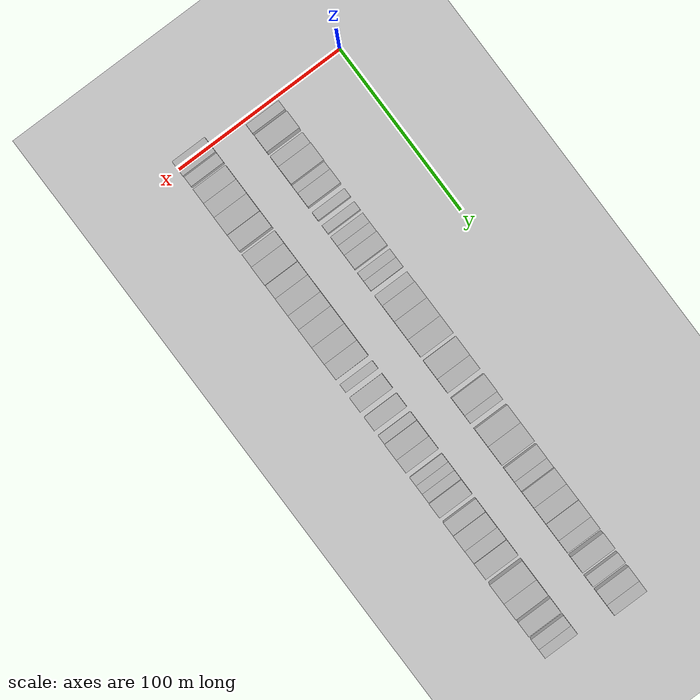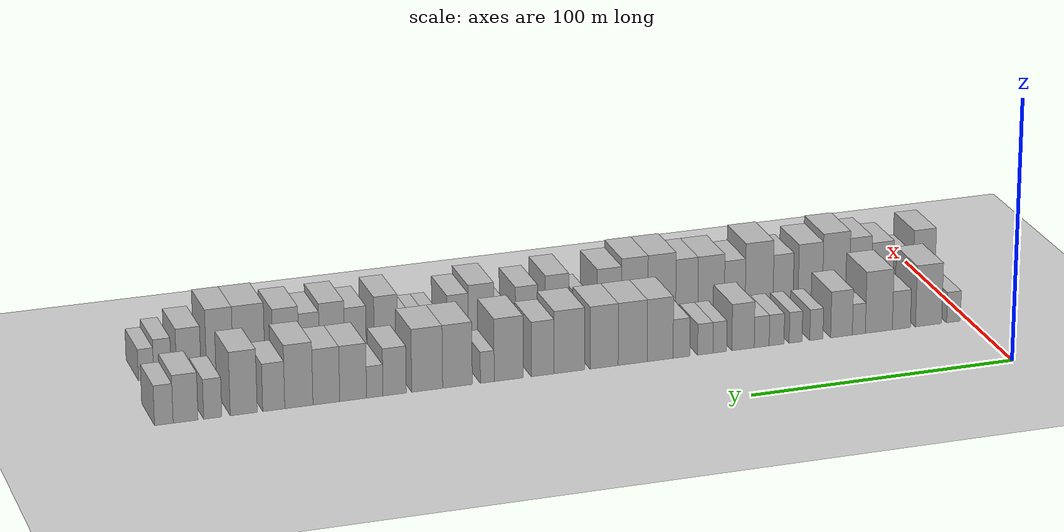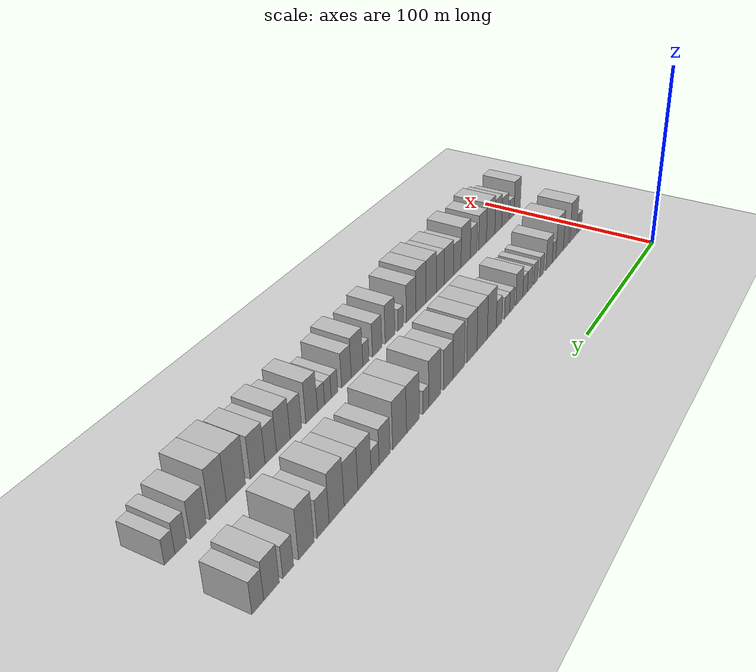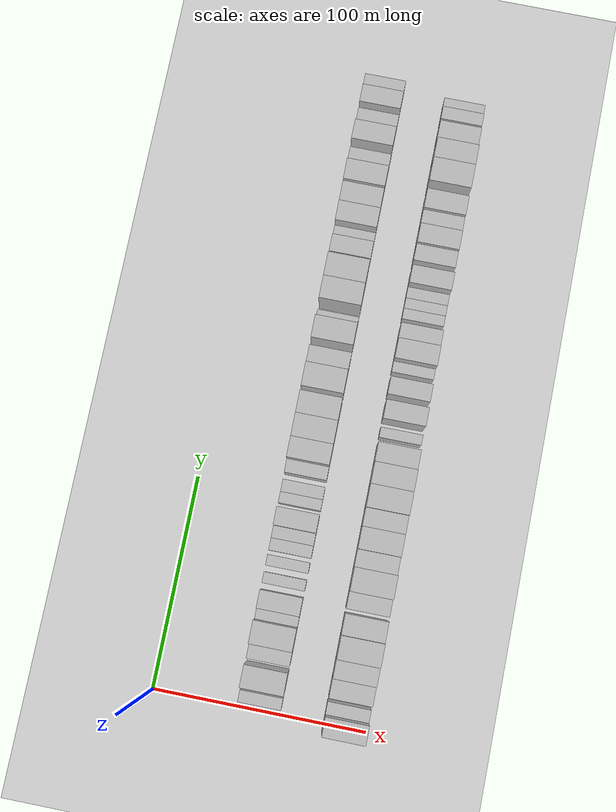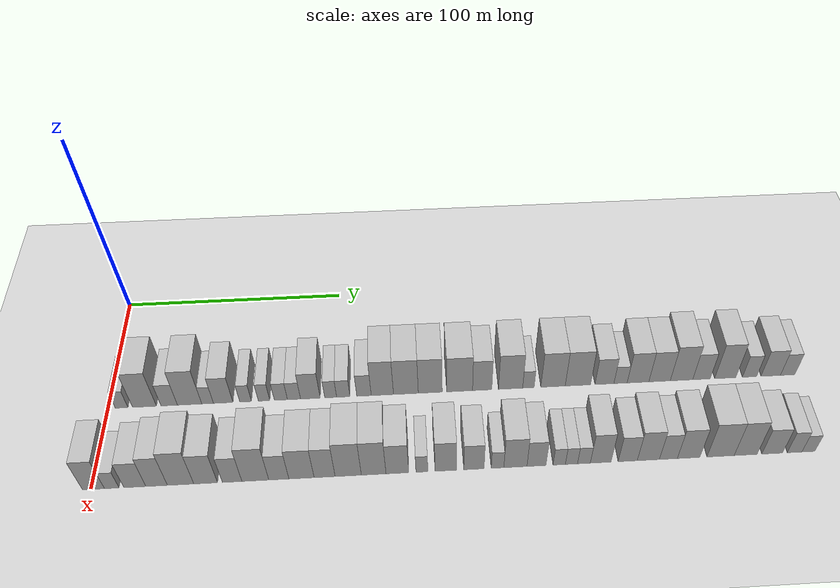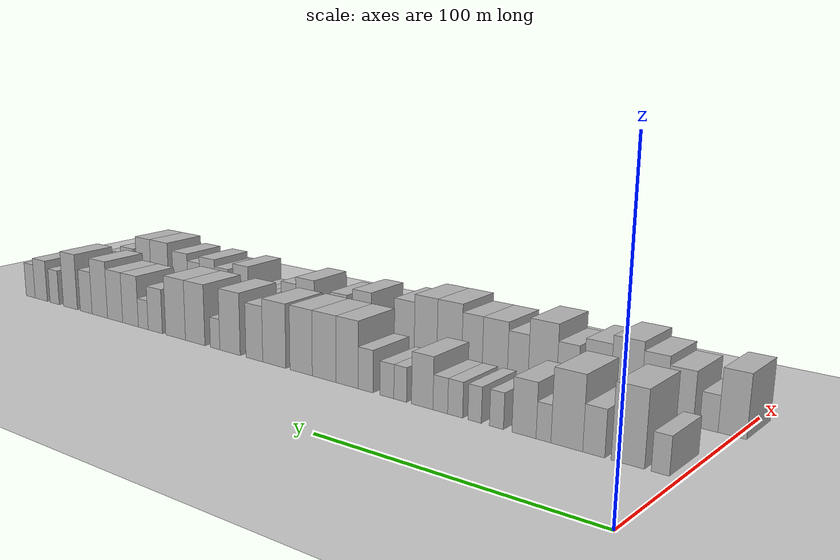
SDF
<sdf version="1.6">
 <world name="default">
  <include>
   <name>ground_plane_2</name>
   <uri>model://HANNAS_ground_plane</uri>
   <pose>100 0 0  0 0 0</pose>
  </include>
  <model name="building_34">
   <static>1</static>
   <pose>50.0000 5.9958 0 0.000000 0.000000 0.000000</pose>
   <link name="link">
    <pose>0 0 6.00 0 0 0</pose>
    <collision name="collision"><geometry><box><size>20.0000 5.4830 12.0000</size></box></geometry></collision>
    <visual name="visual">
     <cast_shadows>0</cast_shadows>
     <geometry><box><size>20.0000 5.4830 12.0000</size></box></geometry>
     <material>
      <script>
       <uri>model://HANNAS_wall/materials/scripts</uri>
       <uri>model://HANNAS_wall/materials/textures</uri>
       <name>vrc/HANNAS_wall</name>
      </script>
     </material>
    </visual>
   </link>
  </model>
  <model name="building_35">
   <static>1</static>
   <pose>50.0000 15.9093 0 0.000000 0.000000 0.000000</pose>
   <link name="link">
    <pose>0 0 12.00 0 0 0</pose>
    <collision name="collision"><geometry><box><size>20.0000 10.3439 24.0000</size></box></geometry></collision>
    <visual name="visual">
     <cast_shadows>0</cast_shadows>
     <geometry><box><size>20.0000 10.3439 24.0000</size></box></geometry>
     <material>
      <script>
       <uri>model://HANNAS_wall/materials/scripts</uri>
       <uri>model://HANNAS_wall/materials/textures</uri>
       <name>vrc/HANNAS_wall</name>
      </script>
     </material>
    </visual>
   </link>
  </model>
  <model name="building_36">
   <static>1</static>
   <pose>50.0000 26.6475 0 0.000000 0.000000 0.000000</pose>
   <link name="link">
    <pose>0 0 7.50 0 0 0</pose>
    <collision name="collision"><geometry><box><size>20.0000 7.1325 15.0000</size></box></geometry></collision>
    <visual name="visual">
     <cast_shadows>0</cast_shadows>
     <geometry><box><size>20.0000 7.1325 15.0000</size></box></geometry>
     <material>
      <script>
       <uri>model://HANNAS_wall/materials/scripts</uri>
       <uri>model://HANNAS_wall/materials/textures</uri>
       <name>vrc/HANNAS_wall</name>
      </script>
     </material>
    </visual>
   </link>
  </model>
  <model name="building_37">
   <static>1</static>
   <pose>50.0000 35.5171 0 0.000000 0.000000 0.000000</pose>
   <link name="link">
    <pose>0 0 12.00 0 0 0</pose>
    <collision name="collision"><geometry><box><size>20.0000 10.6068 24.0000</size></box></geometry></collision>
    <visual name="visual">
     <cast_shadows>0</cast_shadows>
     <geometry><box><size>20.0000 10.6068 24.0000</size></box></geometry>
     <material>
      <script>
       <uri>model://HANNAS_wall/materials/scripts</uri>
       <uri>model://HANNAS_wall/materials/textures</uri>
       <name>vrc/HANNAS_wall</name>
      </script>
     </material>
    </visual>
   </link>
  </model>
  <model name="building_38">
   <static>1</static>
   <pose>50.0000 43.3631 0 0.000000 0.000000 0.000000</pose>
   <link name="link">
    <pose>0 0 6.00 0 0 0</pose>
    <collision name="collision"><geometry><box><size>20.0000 5.0853 12.0000</size></box></geometry></collision>
    <visual name="visual">
     <cast_shadows>0</cast_shadows>
     <geometry><box><size>20.0000 5.0853 12.0000</size></box></geometry>
     <material>
      <script>
       <uri>model://HANNAS_wall/materials/scripts</uri>
       <uri>model://HANNAS_wall/materials/textures</uri>
       <name>vrc/HANNAS_wall</name>
      </script>
     </material>
    </visual>
   </link>
  </model>
  <model name="building_39">
   <static>1</static>
   <pose>50.0000 50.1533 0 0.000000 0.000000 0.000000</pose>
   <link name="link">
    <pose>0 0 9.00 0 0 0</pose>
    <collision name="collision"><geometry><box><size>20.0000 8.4950 18.0000</size></box></geometry></collision>
    <visual name="visual">
     <cast_shadows>0</cast_shadows>
     <geometry><box><size>20.0000 8.4950 18.0000</size></box></geometry>
     <material>
      <script>
       <uri>model://HANNAS_wall/materials/scripts</uri>
       <uri>model://HANNAS_wall/materials/textures</uri>
       <name>vrc/HANNAS_wall</name>
      </script>
     </material>
    </visual>
   </link>
  </model>
  <model name="building_40">
   <static>1</static>
   <pose>50.0000 59.9617 0 0.000000 0.000000 0.000000</pose>
   <link name="link">
    <pose>0 0 6.00 0 0 0</pose>
    <collision name="collision"><geometry><box><size>20.0000 5.1219 12.0000</size></box></geometry></collision>
    <visual name="visual">
     <cast_shadows>0</cast_shadows>
     <geometry><box><size>20.0000 5.1219 12.0000</size></box></geometry>
     <material>
      <script>
       <uri>model://HANNAS_wall/materials/scripts</uri>
       <uri>model://HANNAS_wall/materials/textures</uri>
       <name>vrc/HANNAS_wall</name>
      </script>
     </material>
    </visual>
   </link>
  </model>
  <model name="building_41">
   <static>1</static>
   <pose>50.0000 68.0322 0 0.000000 0.000000 0.000000</pose>
   <link name="link">
    <pose>0 0 6.00 0 0 0</pose>
    <collision name="collision"><geometry><box><size>20.0000 5.0191 12.0000</size></box></geometry></collision>
    <visual name="visual">
     <cast_shadows>0</cast_shadows>
     <geometry><box><size>20.0000 5.0191 12.0000</size></box></geometry>
     <material>
      <script>
       <uri>model://HANNAS_wall/materials/scripts</uri>
       <uri>model://HANNAS_wall/materials/textures</uri>
       <name>vrc/HANNAS_wall</name>
      </script>
     </material>
    </visual>
   </link>
  </model>
  <model name="building_42">
   <static>1</static>
   <pose>50.0000 75.4131 0 0.000000 0.000000 0.000000</pose>
   <link name="link">
    <pose>0 0 6.00 0 0 0</pose>
    <collision name="collision"><geometry><box><size>20.0000 5.7426 12.0000</size></box></geometry></collision>
    <visual name="visual">
     <cast_shadows>0</cast_shadows>
     <geometry><box><size>20.0000 5.7426 12.0000</size></box></geometry>
     <material>
      <script>
       <uri>model://HANNAS_wall/materials/scripts</uri>
       <uri>model://HANNAS_wall/materials/textures</uri>
       <name>vrc/HANNAS_wall</name>
      </script>
     </material>
    </visual>
   </link>
  </model>
  <model name="building_43">
   <static>1</static>
   <pose>50.0000 81.1697 0 0.000000 0.000000 0.000000</pose>
   <link name="link">
    <pose>0 0 6.00 0 0 0</pose>
    <collision name="collision"><geometry><box><size>20.0000 5.7707 12.0000</size></box></geometry></collision>
    <visual name="visual">
     <cast_shadows>0</cast_shadows>
     <geometry><box><size>20.0000 5.7707 12.0000</size></box></geometry>
     <material>
      <script>
       <uri>model://HANNAS_wall/materials/scripts</uri>
       <uri>model://HANNAS_wall/materials/textures</uri>
       <name>vrc/HANNAS_wall</name>
      </script>
     </material>
    </visual>
   </link>
  </model>
  <model name="building_44">
   <static>1</static>
   <pose>50.0000 88.3704 0 0.000000 0.000000 0.000000</pose>
   <link name="link">
    <pose>0 0 9.00 0 0 0</pose>
    <collision name="collision"><geometry><box><size>20.0000 8.6306 18.0000</size></box></geometry></collision>
    <visual name="visual">
     <cast_shadows>0</cast_shadows>
     <geometry><box><size>20.0000 8.6306 18.0000</size></box></geometry>
     <material>
      <script>
       <uri>model://HANNAS_wall/materials/scripts</uri>
       <uri>model://HANNAS_wall/materials/textures</uri>
       <name>vrc/HANNAS_wall</name>
      </script>
     </material>
    </visual>
   </link>
  </model>
  <model name="building_45">
   <static>1</static>
   <pose>50.0000 97.3139 0 0.000000 0.000000 0.000000</pose>
   <link name="link">
    <pose>0 0 6.00 0 0 0</pose>
    <collision name="collision"><geometry><box><size>20.0000 5.2565 12.0000</size></box></geometry></collision>
    <visual name="visual">
     <cast_shadows>0</cast_shadows>
     <geometry><box><size>20.0000 5.2565 12.0000</size></box></geometry>
     <material>
      <script>
       <uri>model://HANNAS_wall/materials/scripts</uri>
       <uri>model://HANNAS_wall/materials/textures</uri>
       <name>vrc/HANNAS_wall</name>
      </script>
     </material>
    </visual>
   </link>
  </model>
  <model name="building_46">
   <static>1</static>
   <pose>50.0000 102.8810 0 0.000000 0.000000 0.000000</pose>
   <link name="link">
    <pose>0 0 6.00 0 0 0</pose>
    <collision name="collision"><geometry><box><size>20.0000 5.8777 12.0000</size></box></geometry></collision>
    <visual name="visual">
     <cast_shadows>0</cast_shadows>
     <geometry><box><size>20.0000 5.8777 12.0000</size></box></geometry>
     <material>
      <script>
       <uri>model://HANNAS_wall/materials/scripts</uri>
       <uri>model://HANNAS_wall/materials/textures</uri>
       <name>vrc/HANNAS_wall</name>
      </script>
     </material>
    </visual>
   </link>
  </model>
  <model name="building_47">
   <static>1</static>
   <pose>50.0000 112.0094 0 0.000000 0.000000 0.000000</pose>
   <link name="link">
    <pose>0 0 7.50 0 0 0</pose>
    <collision name="collision"><geometry><box><size>20.0000 6.3789 15.0000</size></box></geometry></collision>
    <visual name="visual">
     <cast_shadows>0</cast_shadows>
     <geometry><box><size>20.0000 6.3789 15.0000</size></box></geometry>
     <material>
      <script>
       <uri>model://HANNAS_wall/materials/scripts</uri>
       <uri>model://HANNAS_wall/materials/textures</uri>
       <name>vrc/HANNAS_wall</name>
      </script>
     </material>
    </visual>
   </link>
  </model>
  <model name="building_48">
   <static>1</static>
   <pose>50.0000 120.1160 0 0.000000 0.000000 0.000000</pose>
   <link name="link">
    <pose>0 0 12.00 0 0 0</pose>
    <collision name="collision"><geometry><box><size>20.0000 9.8343 24.0000</size></box></geometry></collision>
    <visual name="visual">
     <cast_shadows>0</cast_shadows>
     <geometry><box><size>20.0000 9.8343 24.0000</size></box></geometry>
     <material>
      <script>
       <uri>model://HANNAS_wall/materials/scripts</uri>
       <uri>model://HANNAS_wall/materials/textures</uri>
       <name>vrc/HANNAS_wall</name>
      </script>
     </material>
    </visual>
   </link>
  </model>
  <model name="building_49">
   <static>1</static>
   <pose>50.0000 130.5367 0 0.000000 0.000000 0.000000</pose>
   <link name="link">
    <pose>0 0 12.00 0 0 0</pose>
    <collision name="collision"><geometry><box><size>20.0000 11.0071 24.0000</size></box></geometry></collision>
    <visual name="visual">
     <cast_shadows>0</cast_shadows>
     <geometry><box><size>20.0000 11.0071 24.0000</size></box></geometry>
     <material>
      <script>
       <uri>model://HANNAS_wall/materials/scripts</uri>
       <uri>model://HANNAS_wall/materials/textures</uri>
       <name>vrc/HANNAS_wall</name>
      </script>
     </material>
    </visual>
   </link>
  </model>
  <model name="building_50">
   <static>1</static>
   <pose>50.0000 141.3571 0 0.000000 0.000000 0.000000</pose>
   <link name="link">
    <pose>0 0 12.00 0 0 0</pose>
    <collision name="collision"><geometry><box><size>20.0000 10.6338 24.0000</size></box></geometry></collision>
    <visual name="visual">
     <cast_shadows>0</cast_shadows>
     <geometry><box><size>20.0000 10.6338 24.0000</size></box></geometry>
     <material>
      <script>
       <uri>model://HANNAS_wall/materials/scripts</uri>
       <uri>model://HANNAS_wall/materials/textures</uri>
       <name>vrc/HANNAS_wall</name>
      </script>
     </material>
    </visual>
   </link>
  </model>
  <model name="building_51">
   <static>1</static>
   <pose>50.0000 154.4136 0 0.000000 0.000000 0.000000</pose>
   <link name="link">
    <pose>0 0 12.00 0 0 0</pose>
    <collision name="collision"><geometry><box><size>20.0000 11.4791 24.0000</size></box></geometry></collision>
    <visual name="visual">
     <cast_shadows>0</cast_shadows>
     <geometry><box><size>20.0000 11.4791 24.0000</size></box></geometry>
     <material>
      <script>
       <uri>model://HANNAS_wall/materials/scripts</uri>
       <uri>model://HANNAS_wall/materials/textures</uri>
       <name>vrc/HANNAS_wall</name>
      </script>
     </material>
    </visual>
   </link>
  </model>
  <model name="building_52">
   <static>1</static>
   <pose>50.0000 164.4334 0 0.000000 0.000000 0.000000</pose>
   <link name="link">
    <pose>0 0 10.50 0 0 0</pose>
    <collision name="collision"><geometry><box><size>20.0000 8.5606 21.0000</size></box></geometry></collision>
    <visual name="visual">
     <cast_shadows>0</cast_shadows>
     <geometry><box><size>20.0000 8.5606 21.0000</size></box></geometry>
     <material>
      <script>
       <uri>model://HANNAS_wall/materials/scripts</uri>
       <uri>model://HANNAS_wall/materials/textures</uri>
       <name>vrc/HANNAS_wall</name>
      </script>
     </material>
    </visual>
   </link>
  </model>
  <model name="building_53">
   <static>1</static>
   <pose>50.0000 177.1158 0 0.000000 0.000000 0.000000</pose>
   <link name="link">
    <pose>0 0 12.00 0 0 0</pose>
    <collision name="collision"><geometry><box><size>20.0000 10.8043 24.0000</size></box></geometry></collision>
    <visual name="visual">
     <cast_shadows>0</cast_shadows>
     <geometry><box><size>20.0000 10.8043 24.0000</size></box></geometry>
     <material>
      <script>
       <uri>model://HANNAS_wall/materials/scripts</uri>
       <uri>model://HANNAS_wall/materials/textures</uri>
       <name>vrc/HANNAS_wall</name>
      </script>
     </material>
    </visual>
   </link>
  </model>
  <model name="building_54">
   <static>1</static>
   <pose>50.0000 185.0939 0 0.000000 0.000000 0.000000</pose>
   <link name="link">
    <pose>0 0 6.00 0 0 0</pose>
    <collision name="collision"><geometry><box><size>20.0000 5.1519 12.0000</size></box></geometry></collision>
    <visual name="visual">
     <cast_shadows>0</cast_shadows>
     <geometry><box><size>20.0000 5.1519 12.0000</size></box></geometry>
     <material>
      <script>
       <uri>model://HANNAS_wall/materials/scripts</uri>
       <uri>model://HANNAS_wall/materials/textures</uri>
       <name>vrc/HANNAS_wall</name>
      </script>
     </material>
    </visual>
   </link>
  </model>
  <model name="building_55">
   <static>1</static>
   <pose>50.0000 196.1332 0 0.000000 0.000000 0.000000</pose>
   <link name="link">
    <pose>0 0 12.00 0 0 0</pose>
    <collision name="collision"><geometry><box><size>20.0000 10.9268 24.0000</size></box></geometry></collision>
    <visual name="visual">
     <cast_shadows>0</cast_shadows>
     <geometry><box><size>20.0000 10.9268 24.0000</size></box></geometry>
     <material>
      <script>
       <uri>model://HANNAS_wall/materials/scripts</uri>
       <uri>model://HANNAS_wall/materials/textures</uri>
       <name>vrc/HANNAS_wall</name>
      </script>
     </material>
    </visual>
   </link>
  </model>
  <model name="building_56">
   <static>1</static>
   <pose>50.0000 207.2913 0 0.000000 0.000000 0.000000</pose>
   <link name="link">
    <pose>0 0 12.00 0 0 0</pose>
    <collision name="collision"><geometry><box><size>20.0000 11.3893 24.0000</size></box></geometry></collision>
    <visual name="visual">
     <cast_shadows>0</cast_shadows>
     <geometry><box><size>20.0000 11.3893 24.0000</size></box></geometry>
     <material>
      <script>
       <uri>model://HANNAS_wall/materials/scripts</uri>
       <uri>model://HANNAS_wall/materials/textures</uri>
       <name>vrc/HANNAS_wall</name>
      </script>
     </material>
    </visual>
   </link>
  </model>
  <model name="building_57">
   <static>1</static>
   <pose>50.0000 219.2484 0 0.000000 0.000000 0.000000</pose>
   <link name="link">
    <pose>0 0 9.00 0 0 0</pose>
    <collision name="collision"><geometry><box><size>20.0000 8.5250 18.0000</size></box></geometry></collision>
    <visual name="visual">
     <cast_shadows>0</cast_shadows>
     <geometry><box><size>20.0000 8.5250 18.0000</size></box></geometry>
     <material>
      <script>
       <uri>model://HANNAS_wall/materials/scripts</uri>
       <uri>model://HANNAS_wall/materials/textures</uri>
       <name>vrc/HANNAS_wall</name>
      </script>
     </material>
    </visual>
   </link>
  </model>
  <model name="building_58">
   <static>1</static>
   <pose>50.0000 226.5088 0 0.000000 0.000000 0.000000</pose>
   <link name="link">
    <pose>0 0 6.00 0 0 0</pose>
    <collision name="collision"><geometry><box><size>20.0000 5.9958 12.0000</size></box></geometry></collision>
    <visual name="visual">
     <cast_shadows>0</cast_shadows>
     <geometry><box><size>20.0000 5.9958 12.0000</size></box></geometry>
     <material>
      <script>
       <uri>model://HANNAS_wall/materials/scripts</uri>
       <uri>model://HANNAS_wall/materials/textures</uri>
       <name>vrc/HANNAS_wall</name>
      </script>
     </material>
    </visual>
   </link>
  </model>
  <model name="building_59">
   <static>1</static>
   <pose>50.0000 234.4045 0 0.000000 0.000000 0.000000</pose>
   <link name="link">
    <pose>0 0 10.50 0 0 0</pose>
    <collision name="collision"><geometry><box><size>20.0000 9.7956 21.0000</size></box></geometry></collision>
    <visual name="visual">
     <cast_shadows>0</cast_shadows>
     <geometry><box><size>20.0000 9.7956 21.0000</size></box></geometry>
     <material>
      <script>
       <uri>model://HANNAS_wall/materials/scripts</uri>
       <uri>model://HANNAS_wall/materials/textures</uri>
       <name>vrc/HANNAS_wall</name>
      </script>
     </material>
    </visual>
   </link>
  </model>
  <model name="building_60">
   <static>1</static>
   <pose>50.0000 244.1579 0 0.000000 0.000000 0.000000</pose>
   <link name="link">
    <pose>0 0 10.50 0 0 0</pose>
    <collision name="collision"><geometry><box><size>20.0000 9.7112 21.0000</size></box></geometry></collision>
    <visual name="visual">
     <cast_shadows>0</cast_shadows>
     <geometry><box><size>20.0000 9.7112 21.0000</size></box></geometry>
     <material>
      <script>
       <uri>model://HANNAS_wall/materials/scripts</uri>
       <uri>model://HANNAS_wall/materials/textures</uri>
       <name>vrc/HANNAS_wall</name>
      </script>
     </material>
    </visual>
   </link>
  </model>
  <model name="building_61">
   <static>1</static>
   <pose>50.0000 254.1025 0 0.000000 0.000000 0.000000</pose>
   <link name="link">
    <pose>0 0 12.00 0 0 0</pose>
    <collision name="collision"><geometry><box><size>20.0000 10.1779 24.0000</size></box></geometry></collision>
    <visual name="visual">
     <cast_shadows>0</cast_shadows>
     <geometry><box><size>20.0000 10.1779 24.0000</size></box></geometry>
     <material>
      <script>
       <uri>model://HANNAS_wall/materials/scripts</uri>
       <uri>model://HANNAS_wall/materials/textures</uri>
       <name>vrc/HANNAS_wall</name>
      </script>
     </material>
    </visual>
   </link>
  </model>
  <model name="building_62">
   <static>1</static>
   <pose>50.0000 263.1608 0 0.000000 0.000000 0.000000</pose>
   <link name="link">
    <pose>0 0 9.00 0 0 0</pose>
    <collision name="collision"><geometry><box><size>20.0000 7.9387 18.0000</size></box></geometry></collision>
    <visual name="visual">
     <cast_shadows>0</cast_shadows>
     <geometry><box><size>20.0000 7.9387 18.0000</size></box></geometry>
     <material>
      <script>
       <uri>model://HANNAS_wall/materials/scripts</uri>
       <uri>model://HANNAS_wall/materials/textures</uri>
       <name>vrc/HANNAS_wall</name>
      </script>
     </material>
    </visual>
   </link>
  </model>
  <model name="building_63">
   <static>1</static>
   <pose>50.0000 273.9648 0 0.000000 0.000000 0.000000</pose>
   <link name="link">
    <pose>0 0 12.00 0 0 0</pose>
    <collision name="collision"><geometry><box><size>20.0000 9.6691 24.0000</size></box></geometry></collision>
    <visual name="visual">
     <cast_shadows>0</cast_shadows>
     <geometry><box><size>20.0000 9.6691 24.0000</size></box></geometry>
     <material>
      <script>
       <uri>model://HANNAS_wall/materials/scripts</uri>
       <uri>model://HANNAS_wall/materials/textures</uri>
       <name>vrc/HANNAS_wall</name>
      </script>
     </material>
    </visual>
   </link>
  </model>
  <model name="building_64">
   <static>1</static>
   <pose>50.0000 285.0395 0 0.000000 0.000000 0.000000</pose>
   <link name="link">
    <pose>0 0 7.50 0 0 0</pose>
    <collision name="collision"><geometry><box><size>20.0000 6.4803 15.0000</size></box></geometry></collision>
    <visual name="visual">
     <cast_shadows>0</cast_shadows>
     <geometry><box><size>20.0000 6.4803 15.0000</size></box></geometry>
     <material>
      <script>
       <uri>model://HANNAS_wall/materials/scripts</uri>
       <uri>model://HANNAS_wall/materials/textures</uri>
       <name>vrc/HANNAS_wall</name>
      </script>
     </material>
    </visual>
   </link>
  </model>
  <model name="building_65">
   <static>1</static>
   <pose>50.0000 294.7214 0 0.000000 0.000000 0.000000</pose>
   <link name="link">
    <pose>0 0 9.00 0 0 0</pose>
    <collision name="collision"><geometry><box><size>20.0000 8.8836 18.0000</size></box></geometry></collision>
    <visual name="visual">
     <cast_shadows>0</cast_shadows>
     <geometry><box><size>20.0000 8.8836 18.0000</size></box></geometry>
     <material>
      <script>
       <uri>model://HANNAS_wall/materials/scripts</uri>
       <uri>model://HANNAS_wall/materials/textures</uri>
       <name>vrc/HANNAS_wall</name>
      </script>
     </material>
    </visual>
   </link>
  </model>
  <model name="building_66">
   <static>1</static>
   <pose>50.0000 302.4634 0 0.000000 0.000000 0.000000</pose>
   <link name="link">
    <pose>0 0 7.50 0 0 0</pose>
    <collision name="collision"><geometry><box><size>20.0000 6.6006 15.0000</size></box></geometry></collision>
    <visual name="visual">
     <cast_shadows>0</cast_shadows>
     <geometry><box><size>20.0000 6.6006 15.0000</size></box></geometry>
     <material>
      <script>
       <uri>model://HANNAS_wall/materials/scripts</uri>
       <uri>model://HANNAS_wall/materials/textures</uri>
       <name>vrc/HANNAS_wall</name>
      </script>
     </material>
    </visual>
   </link>
  </model>
  <model name="building_100">
   <static>1</static>
   <pose>90.0000 1.0912 0 0.000000 0.000000 0.000000</pose>
   <link name="link">
    <pose>0 0 10.50 0 0 0</pose>
    <collision name="collision"><geometry><box><size>20.0000 8.9343 21.0000</size></box></geometry></collision>
    <visual name="visual">
     <cast_shadows>0</cast_shadows>
     <geometry><box><size>20.0000 8.9343 21.0000</size></box></geometry>
     <material>
      <script>
       <uri>model://HANNAS_wall/materials/scripts</uri>
       <uri>model://HANNAS_wall/materials/textures</uri>
       <name>vrc/HANNAS_wall</name>
      </script>
     </material>
    </visual>
   </link>
  </model>
  <model name="building_101">
   <static>1</static>
   <pose>90.0000 8.5105 0 0.000000 0.000000 0.000000</pose>
   <link name="link">
    <pose>0 0 6.00 0 0 0</pose>
    <collision name="collision"><geometry><box><size>20.0000 5.9044 12.0000</size></box></geometry></collision>
    <visual name="visual">
     <cast_shadows>0</cast_shadows>
     <geometry><box><size>20.0000 5.9044 12.0000</size></box></geometry>
     <material>
      <script>
       <uri>model://HANNAS_wall/materials/scripts</uri>
       <uri>model://HANNAS_wall/materials/textures</uri>
       <name>vrc/HANNAS_wall</name>
      </script>
     </material>
    </visual>
   </link>
  </model>
  <model name="building_102">
   <static>1</static>
   <pose>90.0000 17.9391 0 0.000000 0.000000 0.000000</pose>
   <link name="link">
    <pose>0 0 9.00 0 0 0</pose>
    <collision name="collision"><geometry><box><size>20.0000 8.9528 18.0000</size></box></geometry></collision>
    <visual name="visual">
     <cast_shadows>0</cast_shadows>
     <geometry><box><size>20.0000 8.9528 18.0000</size></box></geometry>
     <material>
      <script>
       <uri>model://HANNAS_wall/materials/scripts</uri>
       <uri>model://HANNAS_wall/materials/textures</uri>
       <name>vrc/HANNAS_wall</name>
      </script>
     </material>
    </visual>
   </link>
  </model>
  <model name="building_103">
   <static>1</static>
   <pose>90.0000 26.7860 0 0.000000 0.000000 0.000000</pose>
   <link name="link">
    <pose>0 0 10.50 0 0 0</pose>
    <collision name="collision"><geometry><box><size>20.0000 8.7411 21.0000</size></box></geometry></collision>
    <visual name="visual">
     <cast_shadows>0</cast_shadows>
     <geometry><box><size>20.0000 8.7411 21.0000</size></box></geometry>
     <material>
      <script>
       <uri>model://HANNAS_wall/materials/scripts</uri>
       <uri>model://HANNAS_wall/materials/textures</uri>
       <name>vrc/HANNAS_wall</name>
      </script>
     </material>
    </visual>
   </link>
  </model>
  <model name="building_104">
   <static>1</static>
   <pose>90.0000 36.5460 0 0.000000 0.000000 0.000000</pose>
   <link name="link">
    <pose>0 0 12.00 0 0 0</pose>
    <collision name="collision"><geometry><box><size>20.0000 10.7787 24.0000</size></box></geometry></collision>
    <visual name="visual">
     <cast_shadows>0</cast_shadows>
     <geometry><box><size>20.0000 10.7787 24.0000</size></box></geometry>
     <material>
      <script>
       <uri>model://HANNAS_wall/materials/scripts</uri>
       <uri>model://HANNAS_wall/materials/textures</uri>
       <name>vrc/HANNAS_wall</name>
      </script>
     </material>
    </visual>
   </link>
  </model>
  <model name="building_105">
   <static>1</static>
   <pose>90.0000 46.7954 0 0.000000 0.000000 0.000000</pose>
   <link name="link">
    <pose>0 0 10.50 0 0 0</pose>
    <collision name="collision"><geometry><box><size>20.0000 9.7201 21.0000</size></box></geometry></collision>
    <visual name="visual">
     <cast_shadows>0</cast_shadows>
     <geometry><box><size>20.0000 9.7201 21.0000</size></box></geometry>
     <material>
      <script>
       <uri>model://HANNAS_wall/materials/scripts</uri>
       <uri>model://HANNAS_wall/materials/textures</uri>
       <name>vrc/HANNAS_wall</name>
      </script>
     </material>
    </visual>
   </link>
  </model>
  <model name="building_106">
   <static>1</static>
   <pose>90.0000 57.6482 0 0.000000 0.000000 0.000000</pose>
   <link name="link">
    <pose>0 0 9.00 0 0 0</pose>
    <collision name="collision"><geometry><box><size>20.0000 7.9857 18.0000</size></box></geometry></collision>
    <visual name="visual">
     <cast_shadows>0</cast_shadows>
     <geometry><box><size>20.0000 7.9857 18.0000</size></box></geometry>
     <material>
      <script>
       <uri>model://HANNAS_wall/materials/scripts</uri>
       <uri>model://HANNAS_wall/materials/textures</uri>
       <name>vrc/HANNAS_wall</name>
      </script>
     </material>
    </visual>
   </link>
  </model>
  <model name="building_107">
   <static>1</static>
   <pose>90.0000 67.1707 0 0.000000 0.000000 0.000000</pose>
   <link name="link">
    <pose>0 0 12.00 0 0 0</pose>
    <collision name="collision"><geometry><box><size>20.0000 11.0592 24.0000</size></box></geometry></collision>
    <visual name="visual">
     <cast_shadows>0</cast_shadows>
     <geometry><box><size>20.0000 11.0592 24.0000</size></box></geometry>
     <material>
      <script>
       <uri>model://HANNAS_wall/materials/scripts</uri>
       <uri>model://HANNAS_wall/materials/textures</uri>
       <name>vrc/HANNAS_wall</name>
      </script>
     </material>
    </visual>
   </link>
  </model>
  <model name="building_108">
   <static>1</static>
   <pose>90.0000 76.8298 0 0.000000 0.000000 0.000000</pose>
   <link name="link">
    <pose>0 0 9.00 0 0 0</pose>
    <collision name="collision"><geometry><box><size>20.0000 8.2589 18.0000</size></box></geometry></collision>
    <visual name="visual">
     <cast_shadows>0</cast_shadows>
     <geometry><box><size>20.0000 8.2589 18.0000</size></box></geometry>
     <material>
      <script>
       <uri>model://HANNAS_wall/materials/scripts</uri>
       <uri>model://HANNAS_wall/materials/textures</uri>
       <name>vrc/HANNAS_wall</name>
      </script>
     </material>
    </visual>
   </link>
  </model>
  <model name="building_109">
   <static>1</static>
   <pose>90.0000 86.1632 0 0.000000 0.000000 0.000000</pose>
   <link name="link">
    <pose>0 0 10.50 0 0 0</pose>
    <collision name="collision"><geometry><box><size>20.0000 10.4080 21.0000</size></box></geometry></collision>
    <visual name="visual">
     <cast_shadows>0</cast_shadows>
     <geometry><box><size>20.0000 10.4080 21.0000</size></box></geometry>
     <material>
      <script>
       <uri>model://HANNAS_wall/materials/scripts</uri>
       <uri>model://HANNAS_wall/materials/textures</uri>
       <name>vrc/HANNAS_wall</name>
      </script>
     </material>
    </visual>
   </link>
  </model>
  <model name="building_110">
   <static>1</static>
   <pose>90.0000 95.7052 0 0.000000 0.000000 0.000000</pose>
   <link name="link">
    <pose>0 0 10.50 0 0 0</pose>
    <collision name="collision"><geometry><box><size>20.0000 8.6760 21.0000</size></box></geometry></collision>
    <visual name="visual">
     <cast_shadows>0</cast_shadows>
     <geometry><box><size>20.0000 8.6760 21.0000</size></box></geometry>
     <material>
      <script>
       <uri>model://HANNAS_wall/materials/scripts</uri>
       <uri>model://HANNAS_wall/materials/textures</uri>
       <name>vrc/HANNAS_wall</name>
      </script>
     </material>
    </visual>
   </link>
  </model>
  <model name="building_111">
   <static>1</static>
   <pose>90.0000 105.4741 0 0.000000 0.000000 0.000000</pose>
   <link name="link">
    <pose>0 0 12.00 0 0 0</pose>
    <collision name="collision"><geometry><box><size>20.0000 10.8617 24.0000</size></box></geometry></collision>
    <visual name="visual">
     <cast_shadows>0</cast_shadows>
     <geometry><box><size>20.0000 10.8617 24.0000</size></box></geometry>
     <material>
      <script>
       <uri>model://HANNAS_wall/materials/scripts</uri>
       <uri>model://HANNAS_wall/materials/textures</uri>
       <name>vrc/HANNAS_wall</name>
      </script>
     </material>
    </visual>
   </link>
  </model>
  <model name="building_112">
   <static>1</static>
   <pose>90.0000 116.0174 0 0.000000 0.000000 0.000000</pose>
   <link name="link">
    <pose>0 0 12.00 0 0 0</pose>
    <collision name="collision"><geometry><box><size>20.0000 10.2247 24.0000</size></box></geometry></collision>
    <visual name="visual">
     <cast_shadows>0</cast_shadows>
     <geometry><box><size>20.0000 10.2247 24.0000</size></box></geometry>
     <material>
      <script>
       <uri>model://HANNAS_wall/materials/scripts</uri>
       <uri>model://HANNAS_wall/materials/textures</uri>
       <name>vrc/HANNAS_wall</name>
      </script>
     </material>
    </visual>
   </link>
  </model>
  <model name="building_113">
   <static>1</static>
   <pose>90.0000 125.8609 0 0.000000 0.000000 0.000000</pose>
   <link name="link">
    <pose>0 0 10.50 0 0 0</pose>
    <collision name="collision"><geometry><box><size>20.0000 9.4623 21.0000</size></box></geometry></collision>
    <visual name="visual">
     <cast_shadows>0</cast_shadows>
     <geometry><box><size>20.0000 9.4623 21.0000</size></box></geometry>
     <material>
      <script>
       <uri>model://HANNAS_wall/materials/scripts</uri>
       <uri>model://HANNAS_wall/materials/textures</uri>
       <name>vrc/HANNAS_wall</name>
      </script>
     </material>
    </visual>
   </link>
  </model>
  <model name="building_114">
   <static>1</static>
   <pose>90.0000 136.0691 0 0.000000 0.000000 0.000000</pose>
   <link name="link">
    <pose>0 0 6.00 0 0 0</pose>
    <collision name="collision"><geometry><box><size>20.0000 4.9540 12.0000</size></box></geometry></collision>
    <visual name="visual">
     <cast_shadows>0</cast_shadows>
     <geometry><box><size>20.0000 4.9540 12.0000</size></box></geometry>
     <material>
      <script>
       <uri>model://HANNAS_wall/materials/scripts</uri>
       <uri>model://HANNAS_wall/materials/textures</uri>
       <name>vrc/HANNAS_wall</name>
      </script>
     </material>
    </visual>
   </link>
  </model>
  <model name="building_115">
   <static>1</static>
   <pose>90.0000 146.0390 0 0.000000 0.000000 0.000000</pose>
   <link name="link">
    <pose>0 0 10.50 0 0 0</pose>
    <collision name="collision"><geometry><box><size>20.0000 8.9858 21.0000</size></box></geometry></collision>
    <visual name="visual">
     <cast_shadows>0</cast_shadows>
     <geometry><box><size>20.0000 8.9858 21.0000</size></box></geometry>
     <material>
      <script>
       <uri>model://HANNAS_wall/materials/scripts</uri>
       <uri>model://HANNAS_wall/materials/textures</uri>
       <name>vrc/HANNAS_wall</name>
      </script>
     </material>
    </visual>
   </link>
  </model>
  <model name="building_116">
   <static>1</static>
   <pose>90.0000 157.7695 0 0.000000 0.000000 0.000000</pose>
   <link name="link">
    <pose>0 0 9.00 0 0 0</pose>
    <collision name="collision"><geometry><box><size>20.0000 8.4754 18.0000</size></box></geometry></collision>
    <visual name="visual">
     <cast_shadows>0</cast_shadows>
     <geometry><box><size>20.0000 8.4754 18.0000</size></box></geometry>
     <material>
      <script>
       <uri>model://HANNAS_wall/materials/scripts</uri>
       <uri>model://HANNAS_wall/materials/textures</uri>
       <name>vrc/HANNAS_wall</name>
      </script>
     </material>
    </visual>
   </link>
  </model>
  <model name="building_117">
   <static>1</static>
   <pose>90.0000 167.6466 0 0.000000 0.000000 0.000000</pose>
   <link name="link">
    <pose>0 0 6.00 0 0 0</pose>
    <collision name="collision"><geometry><box><size>20.0000 5.2787 12.0000</size></box></geometry></collision>
    <visual name="visual">
     <cast_shadows>0</cast_shadows>
     <geometry><box><size>20.0000 5.2787 12.0000</size></box></geometry>
     <material>
      <script>
       <uri>model://HANNAS_wall/materials/scripts</uri>
       <uri>model://HANNAS_wall/materials/textures</uri>
       <name>vrc/HANNAS_wall</name>
      </script>
     </material>
    </visual>
   </link>
  </model>
  <model name="building_118">
   <static>1</static>
   <pose>90.0000 175.1377 0 0.000000 0.000000 0.000000</pose>
   <link name="link">
    <pose>0 0 10.50 0 0 0</pose>
    <collision name="collision"><geometry><box><size>20.0000 9.7034 21.0000</size></box></geometry></collision>
    <visual name="visual">
     <cast_shadows>0</cast_shadows>
     <geometry><box><size>20.0000 9.7034 21.0000</size></box></geometry>
     <material>
      <script>
       <uri>model://HANNAS_wall/materials/scripts</uri>
       <uri>model://HANNAS_wall/materials/textures</uri>
       <name>vrc/HANNAS_wall</name>
      </script>
     </material>
    </visual>
   </link>
  </model>
  <model name="building_119">
   <static>1</static>
   <pose>90.0000 183.9746 0 0.000000 0.000000 0.000000</pose>
   <link name="link">
    <pose>0 0 9.00 0 0 0</pose>
    <collision name="collision"><geometry><box><size>20.0000 7.9704 18.0000</size></box></geometry></collision>
    <visual name="visual">
     <cast_shadows>0</cast_shadows>
     <geometry><box><size>20.0000 7.9704 18.0000</size></box></geometry>
     <material>
      <script>
       <uri>model://HANNAS_wall/materials/scripts</uri>
       <uri>model://HANNAS_wall/materials/textures</uri>
       <name>vrc/HANNAS_wall</name>
      </script>
     </material>
    </visual>
   </link>
  </model>
  <model name="building_120">
   <static>1</static>
   <pose>90.0000 193.5558 0 0.000000 0.000000 0.000000</pose>
   <link name="link">
    <pose>0 0 6.00 0 0 0</pose>
    <collision name="collision"><geometry><box><size>20.0000 5.1920 12.0000</size></box></geometry></collision>
    <visual name="visual">
     <cast_shadows>0</cast_shadows>
     <geometry><box><size>20.0000 5.1920 12.0000</size></box></geometry>
     <material>
      <script>
       <uri>model://HANNAS_wall/materials/scripts</uri>
       <uri>model://HANNAS_wall/materials/textures</uri>
       <name>vrc/HANNAS_wall</name>
      </script>
     </material>
    </visual>
   </link>
  </model>
  <model name="building_121">
   <static>1</static>
   <pose>90.0000 198.7075 0 0.000000 0.000000 0.000000</pose>
   <link name="link">
    <pose>0 0 6.00 0 0 0</pose>
    <collision name="collision"><geometry><box><size>20.0000 5.1113 12.0000</size></box></geometry></collision>
    <visual name="visual">
     <cast_shadows>0</cast_shadows>
     <geometry><box><size>20.0000 5.1113 12.0000</size></box></geometry>
     <material>
      <script>
       <uri>model://HANNAS_wall/materials/scripts</uri>
       <uri>model://HANNAS_wall/materials/textures</uri>
       <name>vrc/HANNAS_wall</name>
      </script>
     </material>
    </visual>
   </link>
  </model>
  <model name="building_122">
   <static>1</static>
   <pose>90.0000 203.9728 0 0.000000 0.000000 0.000000</pose>
   <link name="link">
    <pose>0 0 6.00 0 0 0</pose>
    <collision name="collision"><geometry><box><size>20.0000 5.4194 12.0000</size></box></geometry></collision>
    <visual name="visual">
     <cast_shadows>0</cast_shadows>
     <geometry><box><size>20.0000 5.4194 12.0000</size></box></geometry>
     <material>
      <script>
       <uri>model://HANNAS_wall/materials/scripts</uri>
       <uri>model://HANNAS_wall/materials/textures</uri>
       <name>vrc/HANNAS_wall</name>
      </script>
     </material>
    </visual>
   </link>
  </model>
  <model name="building_123">
   <static>1</static>
   <pose>90.0000 211.0571 0 0.000000 0.000000 0.000000</pose>
   <link name="link">
    <pose>0 0 10.50 0 0 0</pose>
    <collision name="collision"><geometry><box><size>20.0000 8.7492 21.0000</size></box></geometry></collision>
    <visual name="visual">
     <cast_shadows>0</cast_shadows>
     <geometry><box><size>20.0000 8.7492 21.0000</size></box></geometry>
     <material>
      <script>
       <uri>model://HANNAS_wall/materials/scripts</uri>
       <uri>model://HANNAS_wall/materials/textures</uri>
       <name>vrc/HANNAS_wall</name>
      </script>
     </material>
    </visual>
   </link>
  </model>
  <model name="building_124">
   <static>1</static>
   <pose>90.0000 222.4872 0 0.000000 0.000000 0.000000</pose>
   <link name="link">
    <pose>0 0 9.00 0 0 0</pose>
    <collision name="collision"><geometry><box><size>20.0000 8.1109 18.0000</size></box></geometry></collision>
    <visual name="visual">
     <cast_shadows>0</cast_shadows>
     <geometry><box><size>20.0000 8.1109 18.0000</size></box></geometry>
     <material>
      <script>
       <uri>model://HANNAS_wall/materials/scripts</uri>
       <uri>model://HANNAS_wall/materials/textures</uri>
       <name>vrc/HANNAS_wall</name>
      </script>
     </material>
    </visual>
   </link>
  </model>
  <model name="building_125">
   <static>1</static>
   <pose>90.0000 231.2400 0 0.000000 0.000000 0.000000</pose>
   <link name="link">
    <pose>0 0 10.50 0 0 0</pose>
    <collision name="collision"><geometry><box><size>20.0000 9.3947 21.0000</size></box></geometry></collision>
    <visual name="visual">
     <cast_shadows>0</cast_shadows>
     <geometry><box><size>20.0000 9.3947 21.0000</size></box></geometry>
     <material>
      <script>
       <uri>model://HANNAS_wall/materials/scripts</uri>
       <uri>model://HANNAS_wall/materials/textures</uri>
       <name>vrc/HANNAS_wall</name>
      </script>
     </material>
    </visual>
   </link>
  </model>
  <model name="building_126">
   <static>1</static>
   <pose>90.0000 239.7509 0 0.000000 0.000000 0.000000</pose>
   <link name="link">
    <pose>0 0 9.00 0 0 0</pose>
    <collision name="collision"><geometry><box><size>20.0000 7.6271 18.0000</size></box></geometry></collision>
    <visual name="visual">
     <cast_shadows>0</cast_shadows>
     <geometry><box><size>20.0000 7.6271 18.0000</size></box></geometry>
     <material>
      <script>
       <uri>model://HANNAS_wall/materials/scripts</uri>
       <uri>model://HANNAS_wall/materials/textures</uri>
       <name>vrc/HANNAS_wall</name>
      </script>
     </material>
    </visual>
   </link>
  </model>
  <model name="building_127">
   <static>1</static>
   <pose>90.0000 248.3664 0 0.000000 0.000000 0.000000</pose>
   <link name="link">
    <pose>0 0 10.50 0 0 0</pose>
    <collision name="collision"><geometry><box><size>20.0000 9.6038 21.0000</size></box></geometry></collision>
    <visual name="visual">
     <cast_shadows>0</cast_shadows>
     <geometry><box><size>20.0000 9.6038 21.0000</size></box></geometry>
     <material>
      <script>
       <uri>model://HANNAS_wall/materials/scripts</uri>
       <uri>model://HANNAS_wall/materials/textures</uri>
       <name>vrc/HANNAS_wall</name>
      </script>
     </material>
    </visual>
   </link>
  </model>
  <model name="building_128">
   <static>1</static>
   <pose>90.0000 262.0013 0 0.000000 0.000000 0.000000</pose>
   <link name="link">
    <pose>0 0 12.00 0 0 0</pose>
    <collision name="collision"><geometry><box><size>20.0000 11.6660 24.0000</size></box></geometry></collision>
    <visual name="visual">
     <cast_shadows>0</cast_shadows>
     <geometry><box><size>20.0000 11.6660 24.0000</size></box></geometry>
     <material>
      <script>
       <uri>model://HANNAS_wall/materials/scripts</uri>
       <uri>model://HANNAS_wall/materials/textures</uri>
       <name>vrc/HANNAS_wall</name>
      </script>
     </material>
    </visual>
   </link>
  </model>
  <model name="building_129">
   <static>1</static>
   <pose>90.0000 272.7371 0 0.000000 0.000000 0.000000</pose>
   <link name="link">
    <pose>0 0 12.00 0 0 0</pose>
    <collision name="collision"><geometry><box><size>20.0000 9.8057 24.0000</size></box></geometry></collision>
    <visual name="visual">
     <cast_shadows>0</cast_shadows>
     <geometry><box><size>20.0000 9.8057 24.0000</size></box></geometry>
     <material>
      <script>
       <uri>model://HANNAS_wall/materials/scripts</uri>
       <uri>model://HANNAS_wall/materials/textures</uri>
       <name>vrc/HANNAS_wall</name>
      </script>
     </material>
    </visual>
   </link>
  </model>
  <model name="building_130">
   <static>1</static>
   <pose>90.0000 284.0876 0 0.000000 0.000000 0.000000</pose>
   <link name="link">
    <pose>0 0 9.00 0 0 0</pose>
    <collision name="collision"><geometry><box><size>20.0000 8.8952 18.0000</size></box></geometry></collision>
    <visual name="visual">
     <cast_shadows>0</cast_shadows>
     <geometry><box><size>20.0000 8.8952 18.0000</size></box></geometry>
     <material>
      <script>
       <uri>model://HANNAS_wall/materials/scripts</uri>
       <uri>model://HANNAS_wall/materials/textures</uri>
       <name>vrc/HANNAS_wall</name>
      </script>
     </material>
    </visual>
   </link>
  </model>
  <model name="building_131">
   <static>1</static>
   <pose>90.0000 293.6903 0 0.000000 0.000000 0.000000</pose>
   <link name="link">
    <pose>0 0 7.50 0 0 0</pose>
    <collision name="collision"><geometry><box><size>20.0000 6.3101 15.0000</size></box></geometry></collision>
    <visual name="visual">
     <cast_shadows>0</cast_shadows>
     <geometry><box><size>20.0000 6.3101 15.0000</size></box></geometry>
     <material>
      <script>
       <uri>model://HANNAS_wall/materials/scripts</uri>
       <uri>model://HANNAS_wall/materials/textures</uri>
       <name>vrc/HANNAS_wall</name>
      </script>
     </material>
    </visual>
   </link>
  </model>
  <model name="building_132">
   <static>1</static>
   <pose>90.0000 299.6398 0 0.000000 0.000000 0.000000</pose>
   <link name="link">
    <pose>0 0 6.00 0 0 0</pose>
    <collision name="collision"><geometry><box><size>20.0000 5.5890 12.0000</size></box></geometry></collision>
    <visual name="visual">
     <cast_shadows>0</cast_shadows>
     <geometry><box><size>20.0000 5.5890 12.0000</size></box></geometry>
     <material>
      <script>
       <uri>model://HANNAS_wall/materials/scripts</uri>
       <uri>model://HANNAS_wall/materials/textures</uri>
       <name>vrc/HANNAS_wall</name>
      </script>
     </material>
    </visual>
   </link>
  </model>
 </world>
</sdf>
